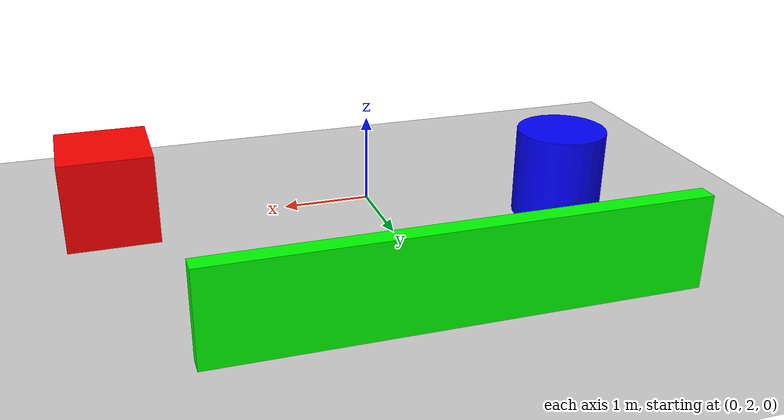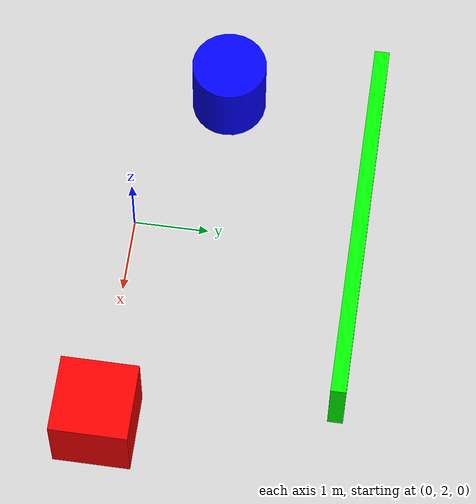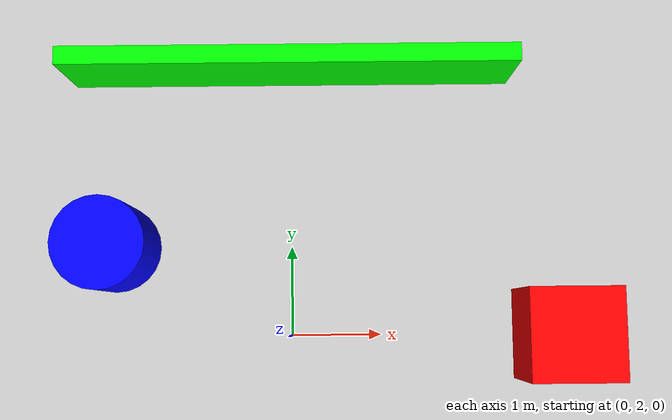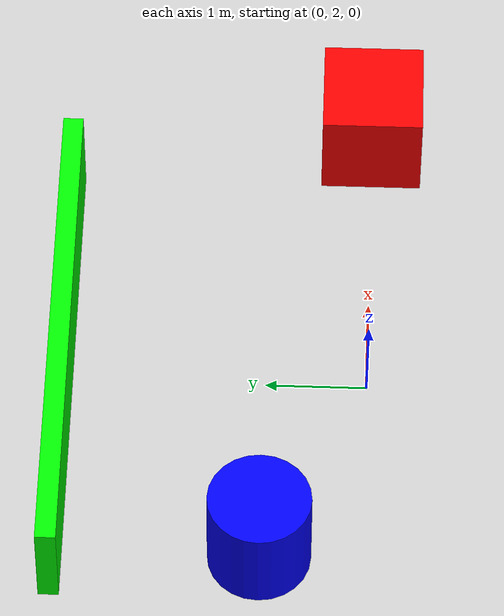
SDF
<?xml version="1.0"?>
<sdf version="1.6">
  <world name="default">

    <!-- Ground plane -->
    <include>
      <uri>model://ground_plane</uri>
    </include>

    <!-- Sun for lighting -->
    <include>
      <uri>model://sun</uri>
    </include>

    <!-- Red box obstacle -->
    <model name="box_obstacle_1">
      <pose>3 2 0.5 0 0 0</pose>
      <static>true</static>
      <link name="link">
        <collision name="collision">
          <geometry>
            <box><size>1 1 1</size></box>
          </geometry>
        </collision>
        <visual name="visual">
          <geometry>
            <box><size>1 1 1</size></box>
          </geometry>
          <material>
            <ambient>1 0 0 1</ambient>
            <diffuse>1 0 0 1</diffuse>
          </material>
        </visual>
      </link>
    </model>

    <!-- Blue cylinder obstacle -->
    <model name="cylinder_obstacle_1">
      <pose>-2 3 0.5 0 0 0</pose>
      <static>true</static>
      <link name="link">
        <collision name="collision">
          <geometry>
            <cylinder>
              <radius>0.5</radius>
              <length>1.0</length>
            </cylinder>
          </geometry>
        </collision>
        <visual name="visual">
          <geometry>
            <cylinder>
              <radius>0.5</radius>
              <length>1.0</length>
            </cylinder>
          </geometry>
          <material>
            <ambient>0 0 1 1</ambient>
            <diffuse>0 0 1 1</diffuse>
          </material>
        </visual>
      </link>
    </model>

    <!-- Green wall -->
    <model name="wall_obstacle">
      <pose>0 5 0.5 0 0 0</pose>
      <static>true</static>
      <link name="link">
        <collision name="collision">
          <geometry>
            <box><size>5 0.2 1</size></box>
          </geometry>
        </collision>
        <visual name="visual">
          <geometry>
            <box><size>5 0.2 1</size></box>
          </geometry>
          <material>
            <ambient>0 1 0 1</ambient>
            <diffuse>0 1 0 1</diffuse>
          </material>
        </visual>
      </link>
    </model>

  </world>
</sdf>
